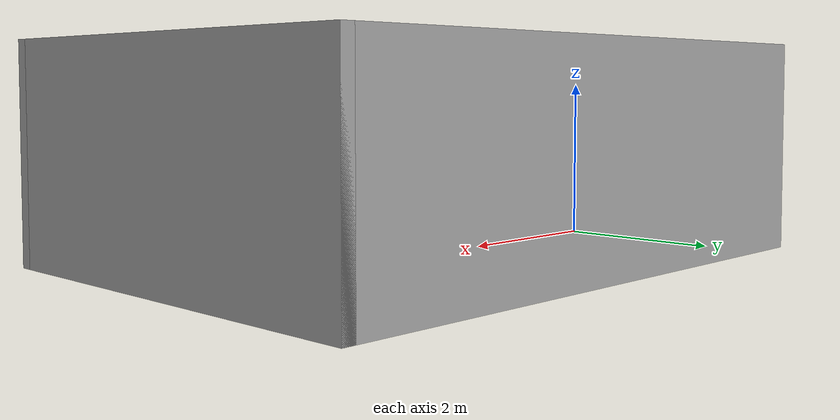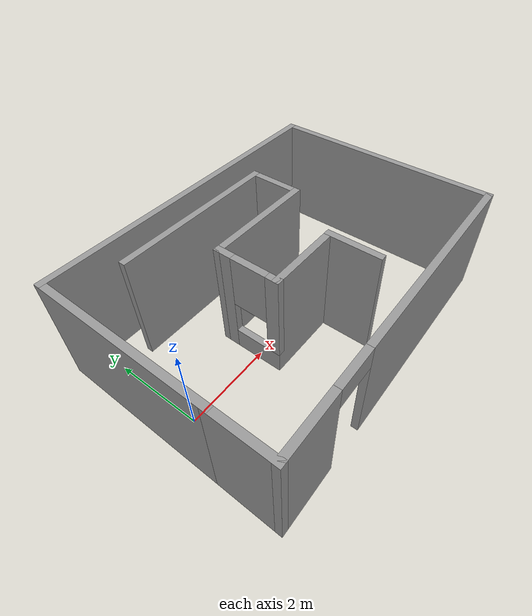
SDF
<?xml version='1.0'?>
<sdf version='1.7'>
  <model name='room2'>
    <pose>3.03 0.08 0 0 -0 0</pose>
    <link name='Wall_0'>
      <collision name='Wall_0_Collision'>
        <geometry>
          <box>
            <size>4 0.15 2.5</size>
          </box>
        </geometry>
        <pose>0 0 1.25 0 -0 0</pose>
      </collision>
      <visual name='Wall_0_Visual'>
        <pose>0 0 1.25 0 -0 0</pose>
        <geometry>
          <box>
            <size>4 0.15 2.5</size>
          </box>
        </geometry>
        <material>
          <script>
            <uri>file://media/materials/scripts/gazebo.material</uri>
            <name>Gazebo/Grey</name>
          </script>
          <ambient>1 1 1 1</ambient>
        </material>
        <meta>
          <layer>0</layer>
        </meta>
      </visual>
      <pose>-3.55 0.625 0 0 -0 1.5708</pose>
    </link>
    <link name='Wall_1'>
      <collision name='Wall_1_Collision'>
        <geometry>
          <box>
            <size>7.25 0.15 2.5</size>
          </box>
        </geometry>
        <pose>0 0 1.25 0 -0 0</pose>
      </collision>
      <visual name='Wall_1_Visual'>
        <pose>0 0 1.25 0 -0 0</pose>
        <geometry>
          <box>
            <size>7.25 0.15 2.5</size>
          </box>
        </geometry>
        <material>
          <script>
            <uri>file://media/materials/scripts/gazebo.material</uri>
            <name>Gazebo/Grey</name>
          </script>
          <ambient>1 1 1 1</ambient>
        </material>
        <meta>
          <layer>0</layer>
        </meta>
      </visual>
      <pose>-0 2.55 0 0 -0 0</pose>
    </link>
    <link name='Wall_10'>
      <collision name='Wall_10_Collision'>
        <geometry>
          <box>
            <size>1.75 0.15 2.5</size>
          </box>
        </geometry>
        <pose>0 0 1.25 0 -0 0</pose>
      </collision>
      <visual name='Wall_10_Visual'>
        <pose>0 0 1.25 0 -0 0</pose>
        <geometry>
          <box>
            <size>1.75 0.15 2.5</size>
          </box>
        </geometry>
        <material>
          <script>
            <uri>file://media/materials/scripts/gazebo.material</uri>
            <name>Gazebo/Grey</name>
          </script>
          <ambient>1 1 1 1</ambient>
        </material>
        <meta>
          <layer>0</layer>
        </meta>
      </visual>
      <pose>-0.277061 -0.58847 0 0 -0 0</pose>
    </link>
    <link name='Wall_11'>
      <collision name='Wall_11_Collision'>
        <geometry>
          <box>
            <size>1.25 0.15 2.5</size>
          </box>
        </geometry>
        <pose>0 0 1.25 0 -0 0</pose>
      </collision>
      <visual name='Wall_11_Visual'>
        <pose>0 0 1.25 0 -0 0</pose>
        <geometry>
          <box>
            <size>1.25 0.15 2.5</size>
          </box>
        </geometry>
        <material>
          <script>
            <uri>file://media/materials/scripts/gazebo.material</uri>
            <name>Gazebo/Grey</name>
          </script>
          <ambient>1 1 1 1</ambient>
        </material>
        <meta>
          <layer>0</layer>
        </meta>
      </visual>
      <pose>0.522938 -1.13847 0 0 -0 -1.5708</pose>
    </link>
    <link name='Wall_2'>
      <collision name='Wall_2_Collision'>
        <geometry>
          <box>
            <size>5.25 0.15 2.5</size>
          </box>
        </geometry>
        <pose>0 0 1.25 0 -0 0</pose>
      </collision>
      <visual name='Wall_2_Visual'>
        <pose>0 0 1.25 0 -0 0</pose>
        <geometry>
          <box>
            <size>5.25 0.15 2.5</size>
          </box>
        </geometry>
        <material>
          <script>
            <uri>file://media/materials/scripts/gazebo.material</uri>
            <name>Gazebo/Grey</name>
          </script>
          <ambient>1 1 1 1</ambient>
        </material>
        <meta>
          <layer>0</layer>
        </meta>
      </visual>
      <pose>3.55 0 0 0 -0 -1.5708</pose>
    </link>
    <link name='Wall_3'>
      <pose>-0 -2.55 0 0 -0 3.14159</pose>
      <visual name='Wall_3_Visual_0'>
        <pose>-1.1455 0 1.25 0 -0 0</pose>
        <geometry>
          <box>
            <size>4.95899 0.15 2.5</size>
          </box>
        </geometry>
        <material>
          <script>
            <uri>file://media/materials/scripts/gazebo.material</uri>
            <name>Gazebo/Grey</name>
          </script>
          <ambient>1 1 1 1</ambient>
        </material>
        <meta>
          <layer>0</layer>
        </meta>
      </visual>
      <collision name='Wall_3_Collision_0'>
        <geometry>
          <box>
            <size>4.95899 0.15 2.5</size>
          </box>
        </geometry>
        <pose>-1.1455 0 1.25 0 -0 0</pose>
      </collision>
      <visual name='Wall_3_Visual_1'>
        <pose>2.9295 0 1.25 0 -0 0</pose>
        <geometry>
          <box>
            <size>1.39101 0.15 2.5</size>
          </box>
        </geometry>
        <material>
          <script>
            <uri>file://media/materials/scripts/gazebo.material</uri>
            <name>Gazebo/Grey</name>
          </script>
          <ambient>1 1 1 1</ambient>
        </material>
        <meta>
          <layer>0</layer>
        </meta>
      </visual>
      <collision name='Wall_3_Collision_1'>
        <geometry>
          <box>
            <size>1.39101 0.15 2.5</size>
          </box>
        </geometry>
        <pose>2.9295 0 1.25 0 -0 0</pose>
      </collision>
      <visual name='Wall_3_Visual_2'>
        <pose>1.78399 0 2.25 0 -0 0</pose>
        <geometry>
          <box>
            <size>0.9 0.15 0.5</size>
          </box>
        </geometry>
        <material>
          <script>
            <uri>file://media/materials/scripts/gazebo.material</uri>
            <name>Gazebo/Grey</name>
          </script>
          <ambient>1 1 1 1</ambient>
        </material>
        <meta>
          <layer>0</layer>
        </meta>
      </visual>
      <collision name='Wall_3_Collision_2'>
        <geometry>
          <box>
            <size>0.9 0.15 0.5</size>
          </box>
        </geometry>
        <pose>1.78399 0 2.25 0 -0 0</pose>
      </collision>
    </link>
    <link name='Wall_4'>
      <collision name='Wall_4_Collision'>
        <geometry>
          <box>
            <size>1.4 0.15 2.5</size>
          </box>
        </geometry>
        <pose>0 0 1.25 0 -0 0</pose>
      </collision>
      <visual name='Wall_4_Visual'>
        <pose>0 0 1.25 0 -0 0</pose>
        <geometry>
          <box>
            <size>1.4 0.15 2.5</size>
          </box>
        </geometry>
        <material>
          <script>
            <uri>file://media/materials/scripts/gazebo.material</uri>
            <name>Gazebo/Grey</name>
          </script>
          <ambient>1 1 1 1</ambient>
        </material>
        <meta>
          <layer>0</layer>
        </meta>
      </visual>
      <pose>-3.55 -1.925 0 0 -0 1.5708</pose>
    </link>
    <link name='Wall_6'>
      <collision name='Wall_6_Collision'>
        <geometry>
          <box>
            <size>3.75 0.15 2.5</size>
          </box>
        </geometry>
        <pose>0 0 1.25 0 -0 0</pose>
      </collision>
      <visual name='Wall_6_Visual'>
        <pose>0 0 1.25 0 -0 0</pose>
        <geometry>
          <box>
            <size>3.75 0.15 2.5</size>
          </box>
        </geometry>
        <material>
          <script>
            <uri>file://media/materials/scripts/gazebo.material</uri>
            <name>Gazebo/Grey</name>
          </script>
          <ambient>1 1 1 1</ambient>
        </material>
        <meta>
          <layer>0</layer>
        </meta>
      </visual>
      <pose>-0.527061 1.86153 0 0 -0 0</pose>
    </link>
    <link name='Wall_7'>
      <collision name='Wall_7_Collision'>
        <geometry>
          <box>
            <size>1.25 0.15 2.5</size>
          </box>
        </geometry>
        <pose>0 0 1.25 0 -0 0</pose>
      </collision>
      <visual name='Wall_7_Visual'>
        <pose>0 0 1.25 0 -0 0</pose>
        <geometry>
          <box>
            <size>1.25 0.15 2.5</size>
          </box>
        </geometry>
        <material>
          <script>
            <uri>file://media/materials/scripts/gazebo.material</uri>
            <name>Gazebo/Grey</name>
          </script>
          <ambient>1 1 1 1</ambient>
        </material>
        <meta>
          <layer>0</layer>
        </meta>
      </visual>
      <pose>1.27294 1.31153 0 0 -0 -1.5708</pose>
    </link>
    <link name='Wall_8'>
      <collision name='Wall_8_Collision'>
        <geometry>
          <box>
            <size>2.5 0.15 2.5</size>
          </box>
        </geometry>
        <pose>0 0 1.25 0 -0 0</pose>
      </collision>
      <visual name='Wall_8_Visual'>
        <pose>0 0 1.25 0 -0 0</pose>
        <geometry>
          <box>
            <size>2.5 0.15 2.5</size>
          </box>
        </geometry>
        <material>
          <script>
            <uri>file://media/materials/scripts/gazebo.material</uri>
            <name>Gazebo/Grey</name>
          </script>
          <ambient>1 1 1 1</ambient>
        </material>
        <meta>
          <layer>0</layer>
        </meta>
      </visual>
      <pose>0.097939 0.76153 0 0 -0 3.14159</pose>
    </link>
    <link name='Wall_9'>
      <pose>-1.07706 0.08653 0 0 -0 -1.5708</pose>
      <visual name='Wall_9_Visual_0'>
        <pose>-0.547332 0 1.25 0 -0 0</pose>
        <geometry>
          <box>
            <size>0.405335 0.15 2.5</size>
          </box>
        </geometry>
        <material>
          <script>
            <uri>file://media/materials/scripts/gazebo.material</uri>
            <name>Gazebo/Grey</name>
          </script>
          <ambient>1 1 1 1</ambient>
        </material>
        <meta>
          <layer>0</layer>
        </meta>
      </visual>
      <collision name='Wall_9_Collision_0'>
        <geometry>
          <box>
            <size>0.405335 0.15 2.5</size>
          </box>
        </geometry>
        <pose>-0.547332 0 1.25 0 -0 0</pose>
      </collision>
      <visual name='Wall_9_Visual_1'>
        <pose>0.202668 0 0.25 0 -0 0</pose>
        <geometry>
          <box>
            <size>1.09466 0.15 0.5</size>
          </box>
        </geometry>
        <material>
          <script>
            <uri>file://media/materials/scripts/gazebo.material</uri>
            <name>Gazebo/Grey</name>
          </script>
          <ambient>1 1 1 1</ambient>
        </material>
        <meta>
          <layer>0</layer>
        </meta>
      </visual>
      <collision name='Wall_9_Collision_1'>
        <geometry>
          <box>
            <size>1.09466 0.15 0.5</size>
          </box>
        </geometry>
        <pose>0.202668 0 0.25 0 -0 0</pose>
      </collision>
      <visual name='Wall_9_Visual_2'>
        <pose>0.602668 0 1.5 0 -0 0</pose>
        <geometry>
          <box>
            <size>0.294665 0.15 2</size>
          </box>
        </geometry>
        <material>
          <script>
            <uri>file://media/materials/scripts/gazebo.material</uri>
            <name>Gazebo/Grey</name>
          </script>
          <ambient>1 1 1 1</ambient>
        </material>
        <meta>
          <layer>0</layer>
        </meta>
      </visual>
      <collision name='Wall_9_Collision_2'>
        <geometry>
          <box>
            <size>0.294665 0.15 2</size>
          </box>
        </geometry>
        <pose>0.602668 0 1.5 0 -0 0</pose>
      </collision>
      <visual name='Wall_9_Visual_3'>
        <pose>0.055335 0 1.9 0 -0 0</pose>
        <geometry>
          <box>
            <size>0.8 0.15 1.2</size>
          </box>
        </geometry>
        <material>
          <script>
            <uri>file://media/materials/scripts/gazebo.material</uri>
            <name>Gazebo/Grey</name>
          </script>
          <ambient>1 1 1 1</ambient>
        </material>
        <meta>
          <layer>0</layer>
        </meta>
      </visual>
      <collision name='Wall_9_Collision_3'>
        <geometry>
          <box>
            <size>0.8 0.15 1.2</size>
          </box>
        </geometry>
        <pose>0.055335 0 1.9 0 -0 0</pose>
      </collision>
    </link>
    <static>1</static>
  </model>
</sdf>
